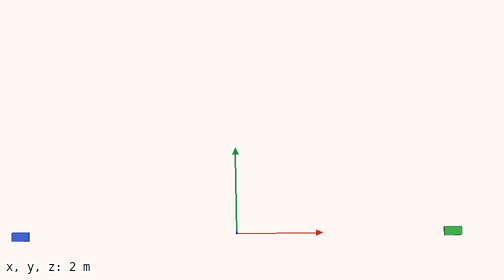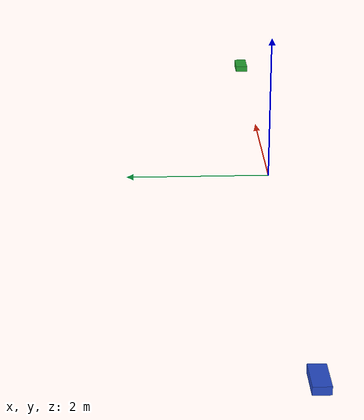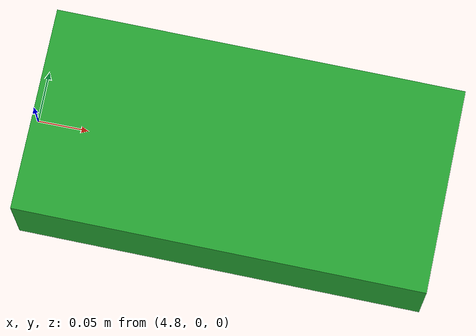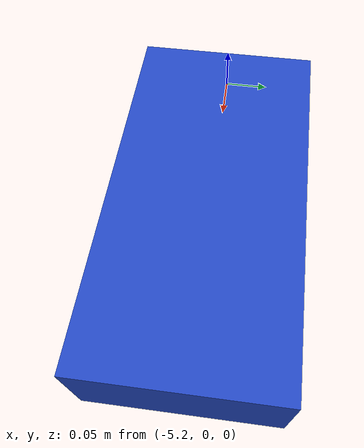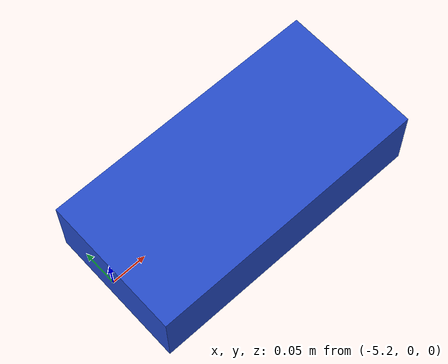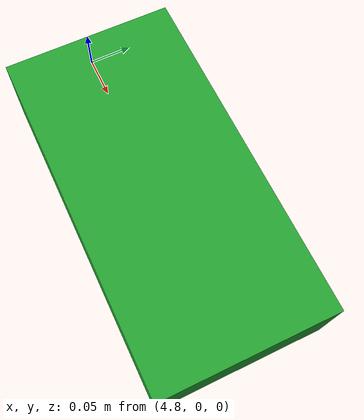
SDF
<?xml version="1.0" ?>
<sdf version="1.3">
  <world name="default">
    <physics type="ode">
      <gravity>0 0 0</gravity>
      <ode>
        <solver>
          <type>quick</type>
          <dt>0.001</dt>
          <iters>40</iters>
          <sor>1.0</sor>
        </solver>
        <constraints>
          <cfm>0.0</cfm>
          <erp>0.2</erp>
          <contact_max_correcting_vel>100.0</contact_max_correcting_vel>
          <contact_surface_layer>0.0</contact_surface_layer>
        </constraints>
      </ode>
    </physics>
    <!-- A global light source -->
    <include>
      <uri>model://sun</uri>
    </include>
    <include>
      <uri>file://models/space</uri>
      <pose>0 0 0 0 0 0</pose>
    </include>
    <include>
      <uri>file://models/prey</uri>
      <pose>5 0 0 0 0 0</pose>
    </include>
    <include>
      <uri>file://models/predator</uri>
      <pose>-5 0 0 0 0 0</pose>
    </include>
  </world>
</sdf>

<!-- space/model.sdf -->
<sdf version="1.4">
  <model name="pen">
    <static>true</static>
    <link name="wall_east">
      <pose>25.0 0 0 0 0 0</pose>
      <collision name="wall_east_col">
        <pose>0 0 0 0 0 0</pose>
        <geometry>
          <box>
            <size>0.1 50.0 50.0</size>
          </box>
        </geometry>
      </collision>
    </link>
    <link name="wall_west">
      <pose>-25.0 0 0 0 0 0</pose>
      <collision name="wall_west_col">
        <pose>0 0 0 0 0 0</pose>
        <geometry>
          <box>
            <size>0.1 50.0 50.0</size>
          </box>
        </geometry>
      </collision>
    </link>
    <link name="wall_north">
      <pose>0 25.0 0 0 0 0</pose>
      <collision name="wall_north_col">
        <pose>0 0 0 0 0 0</pose>
        <geometry>
          <box>
            <size>50.0 0.1 50.0</size>
          </box>
        </geometry>
      </collision>
    </link>
    <link name="wall_south">
      <pose>0 -25.0 0 0 0 0</pose>
      <collision name="wall_south_col">
        <pose>0 0 0 0 0 0</pose>
        <geometry>
          <box>
            <size>50.0 0.1 50.0</size>
          </box>
        </geometry>
      </collision>
    </link>
    <link name="wall_up">
      <pose>0 0 25.0 0 0 0</pose>
      <collision name="wall_up_col">
        <pose>0 0 0 0 0 0</pose>
        <geometry>
          <box>
            <size>50.0 50.0 0.1</size>
          </box>
        </geometry>
      </collision>
    </link>
    <link name="wall_down">
      <pose>0.0 0 -25.0 0 0 0</pose>
      <collision name="wall_down_col">
        <pose>0 0 0 0 0 0</pose>
        <geometry>
          <box>
            <size>50.0 50.0 0.1</size>
          </box>
        </geometry>
      </collision>
    </link>
  </model>
</sdf>

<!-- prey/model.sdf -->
<sdf version="1.4">
  <model name="prey">
    <link name="body">
      <pose>0 0 0 0 0 0</pose>
      <inertial>
        <pose>0 0 0 0 0 0</pose>
        <inertia>
          <ixx>0.41667</ixx>
          <ixy>0</ixy>
          <ixz>0</ixz>
          <iyy>1.41667</iyy>
          <iyz>0</iyz>
          <izz>1.66667</izz>
        </inertia>
        <mass>1.0</mass>
      </inertial>
      <collision name="body_col">
        <pose>0 0 0 0 0 0</pose>
        <geometry>
          <box>
            <size>0.4 0.2 0.1</size>
          </box>
        </geometry>
      </collision>
      <visual name="body_vis">
        <pose>0 0 0 0 0 0</pose>
        <geometry>
          <box>
            <size>0.4 0.2 0.1</size>
          </box>
        </geometry>
        <material>
          <script>
            <uri>file://media/materials/scripts/gazebo.material</uri>
            <name>Gazebo/Green</name>
          </script>
        </material>
      </visual>
    </link>

    <plugin name='ship_controller' filename='libship_controller.so'>
    </plugin>

  </model>
</sdf>

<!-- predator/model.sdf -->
<sdf version="1.4">
  <model name="predator">
    <link name="body">
      <pose>0 0 0 0 0 0</pose>
      <inertial>
        <pose>0 0 0 0 0 0</pose>
        <inertia>
          <ixx>0.41667</ixx>
          <ixy>0</ixy>
          <ixz>0</ixz>
          <iyy>1.41667</iyy>
          <iyz>0</iyz>
          <izz>1.66667</izz>
        </inertia>
        <mass>1.0</mass>
      </inertial>
      <collision name="body_col">
        <pose>0 0 0 0 0 0</pose>
        <geometry>
          <box>
            <size>0.4 0.2 0.1</size>
          </box>
        </geometry>
      </collision>
      <visual name="body_vis">
        <pose>0 0 0 0 0 0</pose>
        <geometry>
          <box>
            <size>0.4 0.2 0.1</size>
          </box>
        </geometry>
        <material>
          <script>
            <uri>file://media/materials/scripts/gazebo.material</uri>
            <name>Gazebo/Blue</name>
          </script>
        </material>
      </visual>
    </link>

    <plugin name='ship_controller' filename='libship_controller.so'>
    </plugin>

  </model>
</sdf>
